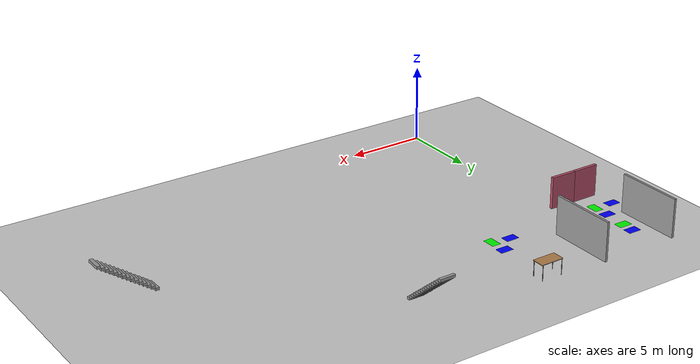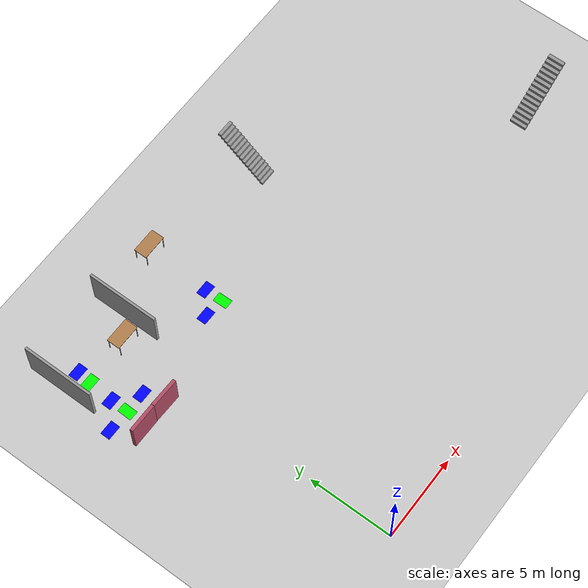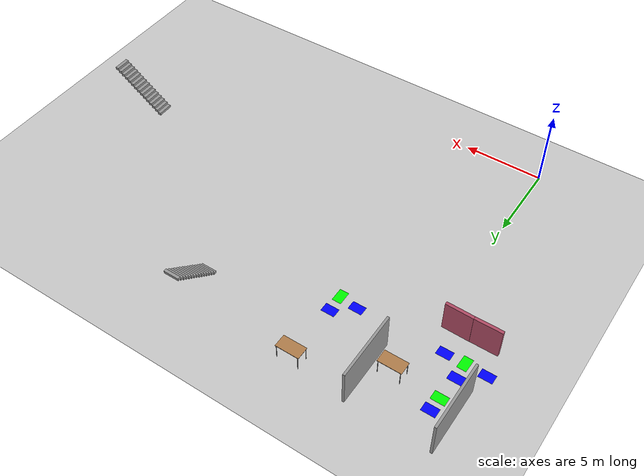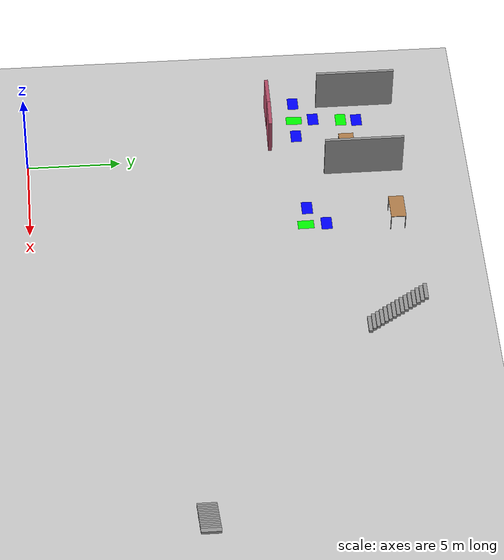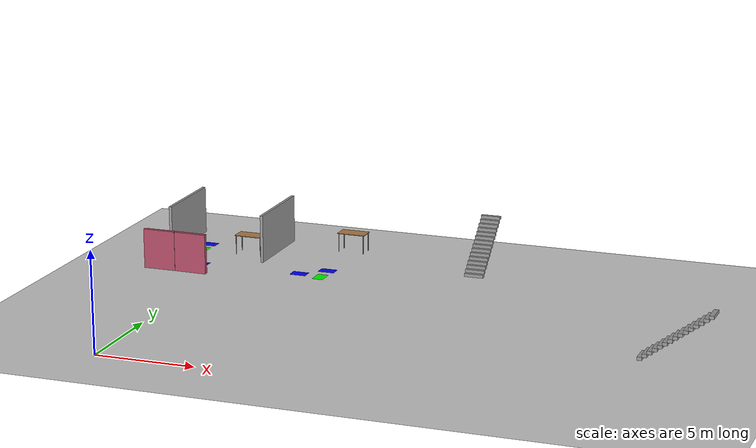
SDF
<sdf version="1.6">
 <world name="default">
  <model name="ground_plane">
   <pose>0 0 0.001 0 -0 0</pose>
   <static>1</static>
   <link name="link">
    <collision name="collision">
     <geometry><plane><normal>0 0 1</normal><size>100 100</size></plane></geometry>
     <surface><friction><ode><mu>100</mu><mu2>50</mu2></ode></friction></surface>
    </collision>
    <visual name="visual">
     <cast_shadows>0</cast_shadows>
     <geometry><plane><normal>0 0 1</normal><size>100 100</size></plane></geometry>
     <material>
      <script><uri>file://media/materials/scripts/gazebo.material</uri><name>Gazebo/Grey</name></script>
     </material>
    </visual>
   </link>
  </model>
  <model name="table_6">
   <static>1</static>
   <link name="link">
    <collision name="surface">
     <pose>0 0 1 0 -0 0</pose>
     <geometry><box><size>1.5 0.8 0.03</size></box></geometry>
     <surface><friction><ode><mu>0.6</mu><mu2>0.6</mu2></ode></friction></surface>
    </collision>
    <visual name="visual1">
     <pose>0 0 1 0 -0 0</pose>
     <geometry><box><size>1.5 0.8 0.03</size></box></geometry>
     <material>
      <script><uri>file://media/materials/scripts/gazebo.material</uri><name>Gazebo/Wood</name></script>
     </material>
    </visual>
    <collision name="front_left_leg">
     <pose>0.68 0.38 0.5 0 -0 0</pose>
     <geometry><cylinder><radius>0.02</radius><length>1</length></cylinder></geometry>
    </collision>
    <visual name="front_left_leg">
     <pose>0.68 0.38 0.5 0 -0 0</pose>
     <geometry><cylinder><radius>0.02</radius><length>1</length></cylinder></geometry>
     <material>
      <script><uri>file://media/materials/scripts/gazebo.material</uri><name>Gazebo/Grey</name></script>
     </material>
    </visual>
    <collision name="front_right_leg">
     <pose>0.68 -0.38 0.5 0 -0 0</pose>
     <geometry><cylinder><radius>0.02</radius><length>1</length></cylinder></geometry>
    </collision>
    <visual name="front_right_leg">
     <pose>0.68 -0.38 0.5 0 -0 0</pose>
     <geometry><cylinder><radius>0.02</radius><length>1</length></cylinder></geometry>
     <material>
      <script><uri>file://media/materials/scripts/gazebo.material</uri><name>Gazebo/Grey</name></script>
     </material>
    </visual>
    <collision name="back_right_leg">
     <pose>-0.68 -0.38 0.5 0 -0 0</pose>
     <geometry><cylinder><radius>0.02</radius><length>1</length></cylinder></geometry>
    </collision>
    <visual name="back_right_leg">
     <pose>-0.68 -0.38 0.5 0 -0 0</pose>
     <geometry><cylinder><radius>0.02</radius><length>1</length></cylinder></geometry>
     <material>
      <script><uri>file://media/materials/scripts/gazebo.material</uri><name>Gazebo/Grey</name></script>
     </material>
    </visual>
    <collision name="back_left_leg">
     <pose>-0.68 0.38 0.5 0 -0 0</pose>
     <geometry><cylinder><radius>0.02</radius><length>1</length></cylinder></geometry>
    </collision>
    <visual name="back_left_leg">
     <pose>-0.68 0.38 0.5 0 -0 0</pose>
     <geometry><cylinder><radius>0.02</radius><length>1</length></cylinder></geometry>
     <material>
      <script><uri>file://media/materials/scripts/gazebo.material</uri><name>Gazebo/Grey</name></script>
     </material>
    </visual>
   </link>
   <pose>0.272964 17.3657 0.001 0 -0 0</pose>
  </model>
  <model name="table_11">
   <static>1</static>
   <link name="link">
    <collision name="surface">
     <pose>0 0 1 0 -0 0</pose>
     <geometry><box><size>1.5 0.8 0.03</size></box></geometry>
     <surface><friction><ode><mu>0.6</mu><mu2>0.6</mu2></ode></friction></surface>
    </collision>
    <visual name="visual1">
     <pose>0 0 1 0 -0 0</pose>
     <geometry><box><size>1.5 0.8 0.03</size></box></geometry>
     <material>
      <script><uri>file://media/materials/scripts/gazebo.material</uri><name>Gazebo/Wood</name></script>
     </material>
    </visual>
    <collision name="front_left_leg">
     <pose>0.68 0.38 0.5 0 -0 0</pose>
     <geometry><cylinder><radius>0.02</radius><length>1</length></cylinder></geometry>
    </collision>
    <visual name="front_left_leg">
     <pose>0.68 0.38 0.5 0 -0 0</pose>
     <geometry><cylinder><radius>0.02</radius><length>1</length></cylinder></geometry>
     <material>
      <script><uri>file://media/materials/scripts/gazebo.material</uri><name>Gazebo/Grey</name></script>
     </material>
    </visual>
    <collision name="front_right_leg">
     <pose>0.68 -0.38 0.5 0 -0 0</pose>
     <geometry><cylinder><radius>0.02</radius><length>1</length></cylinder></geometry>
    </collision>
    <visual name="front_right_leg">
     <pose>0.68 -0.38 0.5 0 -0 0</pose>
     <geometry><cylinder><radius>0.02</radius><length>1</length></cylinder></geometry>
     <material>
      <script><uri>file://media/materials/scripts/gazebo.material</uri><name>Gazebo/Grey</name></script>
     </material>
    </visual>
    <collision name="back_right_leg">
     <pose>-0.68 -0.38 0.5 0 -0 0</pose>
     <geometry><cylinder><radius>0.02</radius><length>1</length></cylinder></geometry>
    </collision>
    <visual name="back_right_leg">
     <pose>-0.68 -0.38 0.5 0 -0 0</pose>
     <geometry><cylinder><radius>0.02</radius><length>1</length></cylinder></geometry>
     <material>
      <script><uri>file://media/materials/scripts/gazebo.material</uri><name>Gazebo/Grey</name></script>
     </material>
    </visual>
    <collision name="back_left_leg">
     <pose>-0.68 0.38 0.5 0 -0 0</pose>
     <geometry><cylinder><radius>0.02</radius><length>1</length></cylinder></geometry>
    </collision>
    <visual name="back_left_leg">
     <pose>-0.68 0.38 0.5 0 -0 0</pose>
     <geometry><cylinder><radius>0.02</radius><length>1</length></cylinder></geometry>
     <material>
      <script><uri>file://media/materials/scripts/gazebo.material</uri><name>Gazebo/Grey</name></script>
     </material>
    </visual>
   </link>
   <pose>5.18073 19.5521 0.001 0 -0 0</pose>
  </model>
  <model name="corridor_11">
   <link name="link">
    <pose>0 0 0.001 0 -0 0</pose>
    <inertial>
     <mass>0.0352517</mass>
     <inertia>
      <ixx>0.00099707</ixx>
      <ixy>0</ixy>
      <ixz>0</ixz>
      <iyy>0.00220147</iyy>
      <iyz>0</iyz>
      <izz>0.0031692</izz>
     </inertia>
     <pose>0 0 0.001 0 -0 0</pose>
    </inertial>
    <visual name="visual">
     <geometry><box><size>0.862743 0.578289 1e-06</size></box></geometry>
     <material>
      <script><name>Gazebo/Grey</name><uri>file://media/materials/scripts/gazebo.material</uri></script>
      <ambient>0 1 0 1</ambient>
      <diffuse>0 1 0 1</diffuse>
      <specular>0 1 0 1</specular>
      <emissive>0 1 0 1</emissive>
      <shader type="vertex"><normal_map>__default__</normal_map></shader>
     </material>
     <pose>0 0 0.001 0 -0 0</pose>
    </visual>
    <collision name="collision">
     <pose>0 0 0.001 0 -0 0</pose>
     <geometry><box><size>0.862743 0.578289 0.000477</size></box></geometry>
     <surface>
      <friction>
       <ode><mu>1</mu><mu2>1</mu2><fdir1>0 0 0</fdir1><slip1>0</slip1><slip2>0</slip2></ode>
       <torsional>
        <coefficient>1</coefficient>
        <patch_radius>0</patch_radius>
        <surface_radius>0</surface_radius>
        <use_patch_radius>1</use_patch_radius>
        <ode><slip>0</slip></ode>
       </torsional>
      </friction>
      <bounce><restitution_coefficient>0</restitution_coefficient><threshold>1e+06</threshold></bounce>
      <contact>
       <collide_without_contact>0</collide_without_contact>
       <collide_without_contact_bitmask>1</collide_without_contact_bitmask>
       <collide_bitmask>1</collide_bitmask>
       <ode>
        <soft_cfm>0</soft_cfm>
        <soft_erp>0.2</soft_erp>
        <kp>1e+13</kp>
        <kd>1</kd>
        <max_vel>0.01</max_vel>
        <min_depth>0</min_depth>
       </ode>
       <bullet>
        <split_impulse>1</split_impulse>
        <split_impulse_penetration_threshold>-0.01</split_impulse_penetration_threshold>
        <soft_cfm>0</soft_cfm>
        <soft_erp>0.2</soft_erp>
        <kp>1e+13</kp>
        <kd>1</kd>
       </bullet>
      </contact>
     </surface>
    </collision>
   </link>
   <static>1</static>
   <pose>5.24255 14.6948 0 0 -0 1.57892</pose>
  </model>
  <model name="intersection_22">
   <link name="link">
    <pose>0 0 0.001 0 -0 0</pose>
    <inertial>
     <mass>0.0352517</mass>
     <inertia>
      <ixx>0.000997067</ixx>
      <ixy>0</ixy>
      <ixz>0</ixz>
      <iyy>0.00220147</iyy>
      <iyz>0</iyz>
      <izz>0.0031692</izz>
     </inertia>
     <pose>0 0 0.001 0 -0 0</pose>
    </inertial>
    <visual name="visual">
     <geometry><box><size>0.862743 0.578289 1e-06</size></box></geometry>
     <material>
      <script><name>Gazebo/Grey</name><uri>file://media/materials/scripts/gazebo.material</uri></script>
      <ambient>0 0 1 1</ambient>
      <diffuse>0 0 1 1</diffuse>
      <specular>0 0 1 1</specular>
      <emissive>0 0 1 1</emissive>
      <shader type="vertex"><normal_map>__default__</normal_map></shader>
     </material>
     <pose>0 0 0.001 0 -0 0</pose>
    </visual>
    <collision name="collision">
     <pose>0 0 0.001 0 -0 0</pose>
     <geometry><box><size>0.862743 0.578289 0.000477</size></box></geometry>
     <surface>
      <friction>
       <ode><mu>1</mu><mu2>1</mu2><fdir1>0 0 0</fdir1><slip1>0</slip1><slip2>0</slip2></ode>
       <torsional>
        <coefficient>1</coefficient>
        <patch_radius>0</patch_radius>
        <surface_radius>0</surface_radius>
        <use_patch_radius>1</use_patch_radius>
        <ode><slip>0</slip></ode>
       </torsional>
      </friction>
      <bounce><restitution_coefficient>0</restitution_coefficient><threshold>1e+06</threshold></bounce>
      <contact>
       <collide_without_contact>0</collide_without_contact>
       <collide_without_contact_bitmask>1</collide_without_contact_bitmask>
       <collide_bitmask>1</collide_bitmask>
       <ode>
        <soft_cfm>0</soft_cfm>
        <soft_erp>0.2</soft_erp>
        <kp>1e+13</kp>
        <kd>1</kd>
        <max_vel>0.01</max_vel>
        <min_depth>0</min_depth>
       </ode>
       <bullet>
        <split_impulse>1</split_impulse>
        <split_impulse_penetration_threshold>-0.01</split_impulse_penetration_threshold>
        <soft_cfm>0</soft_cfm>
        <soft_erp>0.2</soft_erp>
        <kp>1e+13</kp>
        <kd>1</kd>
       </bullet>
      </contact>
     </surface>
    </collision>
   </link>
   <static>1</static>
   <pose>5.20823 15.8049 0 0 -0 0</pose>
  </model>
  <model name="corridor_13">
   <link name="link">
    <pose>0 0 0.001 0 -0 0</pose>
    <inertial>
     <mass>0.0352517</mass>
     <inertia>
      <ixx>0.00099707</ixx>
      <ixy>0</ixy>
      <ixz>0</ixz>
      <iyy>0.00220147</iyy>
      <iyz>0</iyz>
      <izz>0.0031692</izz>
     </inertia>
     <pose>0 0 0.001 0 -0 0</pose>
    </inertial>
    <visual name="visual">
     <geometry><box><size>0.862743 0.578289 1e-06</size></box></geometry>
     <material>
      <script><name>Gazebo/Grey</name><uri>file://media/materials/scripts/gazebo.material</uri></script>
      <ambient>0 1 0 1</ambient>
      <diffuse>0 1 0 1</diffuse>
      <specular>0 1 0 1</specular>
      <emissive>0 1 0 1</emissive>
      <shader type="vertex"><normal_map>__default__</normal_map></shader>
     </material>
     <pose>0 0 0.001 0 -0 0</pose>
    </visual>
    <collision name="collision">
     <pose>0 0 0.001 0 -0 0</pose>
     <geometry><box><size>0.862743 0.578289 0.000477</size></box></geometry>
     <surface>
      <friction>
       <ode><mu>1</mu><mu2>1</mu2><fdir1>0 0 0</fdir1><slip1>0</slip1><slip2>0</slip2></ode>
       <torsional>
        <coefficient>1</coefficient>
        <patch_radius>0</patch_radius>
        <surface_radius>0</surface_radius>
        <use_patch_radius>1</use_patch_radius>
        <ode><slip>0</slip></ode>
       </torsional>
      </friction>
      <bounce><restitution_coefficient>0</restitution_coefficient><threshold>1e+06</threshold></bounce>
      <contact>
       <collide_without_contact>0</collide_without_contact>
       <collide_without_contact_bitmask>1</collide_without_contact_bitmask>
       <collide_bitmask>1</collide_bitmask>
       <ode>
        <soft_cfm>0</soft_cfm>
        <soft_erp>0.2</soft_erp>
        <kp>1e+13</kp>
        <kd>1</kd>
        <max_vel>0.01</max_vel>
        <min_depth>0</min_depth>
       </ode>
       <bullet>
        <split_impulse>1</split_impulse>
        <split_impulse_penetration_threshold>-0.01</split_impulse_penetration_threshold>
        <soft_cfm>0</soft_cfm>
        <soft_erp>0.2</soft_erp>
        <kp>1e+13</kp>
        <kd>1</kd>
       </bullet>
      </contact>
     </surface>
    </collision>
   </link>
   <static>1</static>
   <pose>-2.65426 14.7336 0 0 -0 1.54604</pose>
  </model>
  <model name="intersection_23">
   <link name="link">
    <pose>0 0 0.001 0 -0 0</pose>
    <inertial>
     <mass>0.0352517</mass>
     <inertia>
      <ixx>0.000997067</ixx>
      <ixy>0</ixy>
      <ixz>0</ixz>
      <iyy>0.00220147</iyy>
      <iyz>0</iyz>
      <izz>0.0031692</izz>
     </inertia>
     <pose>0 0 0.001 0 -0 0</pose>
    </inertial>
    <visual name="visual">
     <geometry><box><size>0.862743 0.578289 1e-06</size></box></geometry>
     <material>
      <script><name>Gazebo/Grey</name><uri>file://media/materials/scripts/gazebo.material</uri></script>
      <ambient>0 0 1 1</ambient>
      <diffuse>0 0 1 1</diffuse>
      <specular>0 0 1 1</specular>
      <emissive>0 0 1 1</emissive>
      <shader type="vertex"><normal_map>__default__</normal_map></shader>
     </material>
     <pose>0 0 0.001 0 -0 0</pose>
    </visual>
    <collision name="collision">
     <pose>0 0 0.001 0 -0 0</pose>
     <geometry><box><size>0.862743 0.578289 0.000477</size></box></geometry>
     <surface>
      <friction>
       <ode><mu>1</mu><mu2>1</mu2><fdir1>0 0 0</fdir1><slip1>0</slip1><slip2>0</slip2></ode>
       <torsional>
        <coefficient>1</coefficient>
        <patch_radius>0</patch_radius>
        <surface_radius>0</surface_radius>
        <use_patch_radius>1</use_patch_radius>
        <ode><slip>0</slip></ode>
       </torsional>
      </friction>
      <bounce><restitution_coefficient>0</restitution_coefficient><threshold>1e+06</threshold></bounce>
      <contact>
       <collide_without_contact>0</collide_without_contact>
       <collide_without_contact_bitmask>1</collide_without_contact_bitmask>
       <collide_bitmask>1</collide_bitmask>
       <ode>
        <soft_cfm>0</soft_cfm>
        <soft_erp>0.2</soft_erp>
        <kp>1e+13</kp>
        <kd>1</kd>
        <max_vel>0.01</max_vel>
        <min_depth>0</min_depth>
       </ode>
       <bullet>
        <split_impulse>1</split_impulse>
        <split_impulse_penetration_threshold>-0.01</split_impulse_penetration_threshold>
        <soft_cfm>0</soft_cfm>
        <soft_erp>0.2</soft_erp>
        <kp>1e+13</kp>
        <kd>1</kd>
       </bullet>
      </contact>
     </surface>
    </collision>
   </link>
   <static>1</static>
   <pose>-2.69543 15.7893 0 0 -0 0</pose>
  </model>
  <model name="intersection_5">
   <link name="link">
    <pose>0 0 0.001 0 -0 0</pose>
    <inertial>
     <mass>0.0352517</mass>
     <inertia>
      <ixx>0.000997067</ixx>
      <ixy>0</ixy>
      <ixz>0</ixz>
      <iyy>0.00220147</iyy>
      <iyz>0</iyz>
      <izz>0.0031692</izz>
     </inertia>
     <pose>0 0 0.001 0 -0 0</pose>
    </inertial>
    <visual name="visual">
     <geometry><box><size>0.862743 0.578289 1e-06</size></box></geometry>
     <material>
      <script><name>Gazebo/Grey</name><uri>file://media/materials/scripts/gazebo.material</uri></script>
      <ambient>0 0 1 1</ambient>
      <diffuse>0 0 1 1</diffuse>
      <specular>0 0 1 1</specular>
      <emissive>0 0 1 1</emissive>
      <shader type="vertex"><normal_map>__default__</normal_map></shader>
     </material>
     <pose>0 0 0.001 0 -0 0</pose>
    </visual>
    <collision name="collision">
     <pose>0 0 0.001 0 -0 0</pose>
     <geometry><box><size>0.862743 0.578289 0.000477</size></box></geometry>
     <surface>
      <friction>
       <ode><mu>1</mu><mu2>1</mu2><fdir1>0 0 0</fdir1><slip1>0</slip1><slip2>0</slip2></ode>
       <torsional>
        <coefficient>1</coefficient>
        <patch_radius>0</patch_radius>
        <surface_radius>0</surface_radius>
        <use_patch_radius>1</use_patch_radius>
        <ode><slip>0</slip></ode>
       </torsional>
      </friction>
      <bounce><restitution_coefficient>0</restitution_coefficient><threshold>1e+06</threshold></bounce>
      <contact>
       <collide_without_contact>0</collide_without_contact>
       <collide_without_contact_bitmask>1</collide_without_contact_bitmask>
       <collide_bitmask>1</collide_bitmask>
       <ode>
        <soft_cfm>0</soft_cfm>
        <soft_erp>0.2</soft_erp>
        <kp>1e+13</kp>
        <kd>1</kd>
        <max_vel>0.01</max_vel>
        <min_depth>0</min_depth>
       </ode>
       <bullet>
        <split_impulse>1</split_impulse>
        <split_impulse_penetration_threshold>-0.01</split_impulse_penetration_threshold>
        <soft_cfm>0</soft_cfm>
        <soft_erp>0.2</soft_erp>
        <kp>1e+13</kp>
        <kd>1</kd>
       </bullet>
      </contact>
     </surface>
    </collision>
   </link>
   <static>1</static>
   <pose>-3.98047 14.7833 0 0 -0 0</pose>
  </model>
  <model name="intersection_6">
   <link name="link">
    <pose>0 0 0.001 0 -0 0</pose>
    <inertial>
     <mass>0.0352517</mass>
     <inertia>
      <ixx>0.000997067</ixx>
      <ixy>0</ixy>
      <ixz>0</ixz>
      <iyy>0.00220147</iyy>
      <iyz>0</iyz>
      <izz>0.0031692</izz>
     </inertia>
     <pose>0 0 0.001 0 -0 0</pose>
    </inertial>
    <visual name="visual">
     <geometry><box><size>0.862743 0.578289 1e-06</size></box></geometry>
     <material>
      <script><name>Gazebo/Grey</name><uri>file://media/materials/scripts/gazebo.material</uri></script>
      <ambient>0 0 1 1</ambient>
      <diffuse>0 0 1 1</diffuse>
      <specular>0 0 1 1</specular>
      <emissive>0 0 1 1</emissive>
      <shader type="vertex"><normal_map>__default__</normal_map></shader>
     </material>
     <pose>0 0 0.001 0 -0 0</pose>
    </visual>
    <collision name="collision">
     <pose>0 0 0.001 0 -0 0</pose>
     <geometry><box><size>0.862743 0.578289 0.000477</size></box></geometry>
     <surface>
      <friction>
       <ode><mu>1</mu><mu2>1</mu2><fdir1>0 0 0</fdir1><slip1>0</slip1><slip2>0</slip2></ode>
       <torsional>
        <coefficient>1</coefficient>
        <patch_radius>0</patch_radius>
        <surface_radius>0</surface_radius>
        <use_patch_radius>1</use_patch_radius>
        <ode><slip>0</slip></ode>
       </torsional>
      </friction>
      <bounce><restitution_coefficient>0</restitution_coefficient><threshold>1e+06</threshold></bounce>
      <contact>
       <collide_without_contact>0</collide_without_contact>
       <collide_without_contact_bitmask>1</collide_without_contact_bitmask>
       <collide_bitmask>1</collide_bitmask>
       <ode>
        <soft_cfm>0</soft_cfm>
        <soft_erp>0.2</soft_erp>
        <kp>1e+13</kp>
        <kd>1</kd>
        <max_vel>0.01</max_vel>
        <min_depth>0</min_depth>
       </ode>
       <bullet>
        <split_impulse>1</split_impulse>
        <split_impulse_penetration_threshold>-0.01</split_impulse_penetration_threshold>
        <soft_cfm>0</soft_cfm>
        <soft_erp>0.2</soft_erp>
        <kp>1e+13</kp>
        <kd>1</kd>
       </bullet>
      </contact>
     </surface>
    </collision>
   </link>
   <static>1</static>
   <pose>-1.44374 14.7521 0 0 -0 0</pose>
  </model>
  <model name="doorOutside_4">
   <link name="link">
    <pose>0.155539 -0.366282 0.216958 0 -0 0</pose>
    <inertial>
     <mass>2.13199</mass>
     <inertia>
      <ixx>0.452656</ixx>
      <ixy>0</ixy>
      <ixz>0</ixz>
      <iyy>0.796738</iyy>
      <iyz>0</iyz>
      <izz>0.699414</izz>
     </inertia>
    </inertial>
    <visual name="visual">
     <geometry><box><size>1.71368 0.198843 2.05986</size></box></geometry>
     <material>
      <script><name>Gazebo/Grey</name><uri>file://media/materials/scripts/gazebo.material</uri></script>
      <ambient>0.7 0.3 0.4 1</ambient>
      <diffuse>0.7 0.7 0.7 1</diffuse>
      <specular>0.01 0.01 0.01 1</specular>
      <emissive>0 0 0 1</emissive>
      <shader type="vertex"><normal_map>__default__</normal_map></shader>
      <lighting>0</lighting>
     </material>
    </visual>
    <collision name="collision">
     <geometry><box><size>1.71368 0.198843 2.05986</size></box></geometry>
     <surface>
      <friction>
       <ode><mu>1</mu><mu2>1</mu2><fdir1>0 0 0</fdir1><slip1>0</slip1><slip2>0</slip2></ode>
       <torsional>
        <coefficient>1</coefficient>
        <patch_radius>0</patch_radius>
        <surface_radius>0</surface_radius>
        <use_patch_radius>1</use_patch_radius>
        <ode><slip>0</slip></ode>
       </torsional>
      </friction>
      <bounce><restitution_coefficient>0</restitution_coefficient><threshold>1e+06</threshold></bounce>
      <contact>
       <collide_without_contact>0</collide_without_contact>
       <collide_without_contact_bitmask>1</collide_without_contact_bitmask>
       <collide_bitmask>1</collide_bitmask>
       <ode>
        <soft_cfm>0</soft_cfm>
        <soft_erp>0.2</soft_erp>
        <kp>1e+13</kp>
        <kd>1</kd>
        <max_vel>0.01</max_vel>
        <min_depth>0</min_depth>
       </ode>
       <bullet>
        <split_impulse>1</split_impulse>
        <split_impulse_penetration_threshold>-0.01</split_impulse_penetration_threshold>
        <soft_cfm>0</soft_cfm>
        <soft_erp>0.2</soft_erp>
        <kp>1e+13</kp>
        <kd>1</kd>
       </bullet>
      </contact>
     </surface>
    </collision>
   </link>
   <static>0</static>
   <pose>-3.16806 13.6328 0.812967 0 -5e-06 0.00012</pose>
  </model>
  <model name="intersection_57">
   <link name="link">
    <pose>0 0 0.001 0 -0 0</pose>
    <inertial>
     <mass>0.0352517</mass>
     <inertia>
      <ixx>0.000997067</ixx>
      <ixy>0</ixy>
      <ixz>0</ixz>
      <iyy>0.00220147</iyy>
      <iyz>0</iyz>
      <izz>0.0031692</izz>
     </inertia>
     <pose>0 0 0.001 0 -0 0</pose>
    </inertial>
    <visual name="visual">
     <geometry><box><size>0.862743 0.578289 1e-06</size></box></geometry>
     <material>
      <script><name>Gazebo/Grey</name><uri>file://media/materials/scripts/gazebo.material</uri></script>
      <ambient>0 0 1 1</ambient>
      <diffuse>0 0 1 1</diffuse>
      <specular>0 0 1 1</specular>
      <emissive>0 0 1 1</emissive>
      <shader type="vertex"><normal_map>__default__</normal_map></shader>
     </material>
     <pose>0 0 0.001 0 -0 0</pose>
    </visual>
    <collision name="collision">
     <pose>0 0 0.001 0 -0 0</pose>
     <geometry><box><size>0.862743 0.578289 0.000477</size></box></geometry>
     <surface>
      <friction>
       <ode><mu>1</mu><mu2>1</mu2><fdir1>0 0 0</fdir1><slip1>0</slip1><slip2>0</slip2></ode>
       <torsional>
        <coefficient>1</coefficient>
        <patch_radius>0</patch_radius>
        <surface_radius>0</surface_radius>
        <use_patch_radius>1</use_patch_radius>
        <ode><slip>0</slip></ode>
       </torsional>
      </friction>
      <bounce><restitution_coefficient>0</restitution_coefficient><threshold>1e+06</threshold></bounce>
      <contact>
       <collide_without_contact>0</collide_without_contact>
       <collide_without_contact_bitmask>1</collide_without_contact_bitmask>
       <collide_bitmask>1</collide_bitmask>
       <ode>
        <soft_cfm>0</soft_cfm>
        <soft_erp>0.2</soft_erp>
        <kp>1e+13</kp>
        <kd>1</kd>
        <max_vel>0.01</max_vel>
        <min_depth>0</min_depth>
       </ode>
       <bullet>
        <split_impulse>1</split_impulse>
        <split_impulse_penetration_threshold>-0.01</split_impulse_penetration_threshold>
        <soft_cfm>0</soft_cfm>
        <soft_erp>0.2</soft_erp>
        <kp>1e+13</kp>
        <kd>1</kd>
       </bullet>
      </contact>
     </surface>
    </collision>
   </link>
   <static>1</static>
   <pose>4.02721 14.859 0 0 -0 0</pose>
  </model>
  <model name="Se1_cut">
   <pose>3.62364 13.9276 0 0 -0 0</pose>
   <link name="Stairs_0">
    <visual name="Stairs_0_Visual_0">
     <pose>8.95439 3.41699 0.083333 0 -0 -3.14159</pose>
     <geometry><box><size>1 0.196093 0.166667</size></box></geometry>
     <material>
      <script><uri>file://media/materials/scripts/gazebo.material</uri><name>Gazebo/Grey</name></script>
      <ambient>1 1 1 1</ambient>
     </material>
    </visual>
    <collision name="Stairs_0_Collision_0">
     <geometry><box><size>1 0.196093 0.166667</size></box></geometry>
     <pose>8.95439 3.41699 0.083333 0 -0 -3.14159</pose>
    </collision>
    <visual name="Stairs_0_Visual_1">
     <pose>8.95439 3.61308 0.25 0 -0 -3.14159</pose>
     <geometry><box><size>1 0.196093 0.166667</size></box></geometry>
     <material>
      <script><uri>file://media/materials/scripts/gazebo.material</uri><name>Gazebo/Grey</name></script>
      <ambient>1 1 1 1</ambient>
     </material>
    </visual>
    <collision name="Stairs_0_Collision_1">
     <geometry><box><size>1 0.196093 0.166667</size></box></geometry>
     <pose>8.95439 3.61308 0.25 0 -0 -3.14159</pose>
    </collision>
    <visual name="Stairs_0_Visual_2">
     <pose>8.95439 3.80917 0.416667 0 -0 -3.14159</pose>
     <geometry><box><size>1 0.196093 0.166667</size></box></geometry>
     <material>
      <script><uri>file://media/materials/scripts/gazebo.material</uri><name>Gazebo/Grey</name></script>
      <ambient>1 1 1 1</ambient>
     </material>
    </visual>
    <collision name="Stairs_0_Collision_2">
     <geometry><box><size>1 0.196093 0.166667</size></box></geometry>
     <pose>8.95439 3.80917 0.416667 0 -0 -3.14159</pose>
    </collision>
    <visual name="Stairs_0_Visual_3">
     <pose>8.95439 4.00526 0.583333 0 -0 -3.14159</pose>
     <geometry><box><size>1 0.196093 0.166667</size></box></geometry>
     <material>
      <script><uri>file://media/materials/scripts/gazebo.material</uri><name>Gazebo/Grey</name></script>
      <ambient>1 1 1 1</ambient>
     </material>
    </visual>
    <collision name="Stairs_0_Collision_3">
     <geometry><box><size>1 0.196093 0.166667</size></box></geometry>
     <pose>8.95439 4.00526 0.583333 0 -0 -3.14159</pose>
    </collision>
    <visual name="Stairs_0_Visual_4">
     <pose>8.95439 4.20136 0.75 0 -0 -3.14159</pose>
     <geometry><box><size>1 0.196093 0.166667</size></box></geometry>
     <material>
      <script><uri>file://media/materials/scripts/gazebo.material</uri><name>Gazebo/Grey</name></script>
      <ambient>1 1 1 1</ambient>
     </material>
    </visual>
    <collision name="Stairs_0_Collision_4">
     <geometry><box><size>1 0.196093 0.166667</size></box></geometry>
     <pose>8.95439 4.20136 0.75 0 -0 -3.14159</pose>
    </collision>
    <visual name="Stairs_0_Visual_5">
     <pose>8.95439 4.39745 0.916667 0 -0 -3.14159</pose>
     <geometry><box><size>1 0.196093 0.166667</size></box></geometry>
     <material>
      <script><uri>file://media/materials/scripts/gazebo.material</uri><name>Gazebo/Grey</name></script>
      <ambient>1 1 1 1</ambient>
     </material>
    </visual>
    <collision name="Stairs_0_Collision_5">
     <geometry><box><size>1 0.196093 0.166667</size></box></geometry>
     <pose>8.95439 4.39745 0.916667 0 -0 -3.14159</pose>
    </collision>
    <visual name="Stairs_0_Visual_6">
     <pose>8.95439 4.59354 1.08333 0 -0 -3.14159</pose>
     <geometry><box><size>1 0.196093 0.166667</size></box></geometry>
     <material>
      <script><uri>file://media/materials/scripts/gazebo.material</uri><name>Gazebo/Grey</name></script>
      <ambient>1 1 1 1</ambient>
     </material>
    </visual>
    <collision name="Stairs_0_Collision_6">
     <geometry><box><size>1 0.196093 0.166667</size></box></geometry>
     <pose>8.95439 4.59354 1.08333 0 -0 -3.14159</pose>
    </collision>
    <visual name="Stairs_0_Visual_7">
     <pose>8.95439 4.78964 1.25 0 -0 -3.14159</pose>
     <geometry><box><size>1 0.196093 0.166667</size></box></geometry>
     <material>
      <script><uri>file://media/materials/scripts/gazebo.material</uri><name>Gazebo/Grey</name></script>
      <ambient>1 1 1 1</ambient>
     </material>
    </visual>
    <collision name="Stairs_0_Collision_7">
     <geometry><box><size>1 0.196093 0.166667</size></box></geometry>
     <pose>8.95439 4.78964 1.25 0 -0 -3.14159</pose>
    </collision>
    <visual name="Stairs_0_Visual_8">
     <pose>8.95439 4.98573 1.41667 0 -0 -3.14159</pose>
     <geometry><box><size>1 0.196093 0.166667</size></box></geometry>
     <material>
      <script><uri>file://media/materials/scripts/gazebo.material</uri><name>Gazebo/Grey</name></script>
      <ambient>1 1 1 1</ambient>
     </material>
    </visual>
    <collision name="Stairs_0_Collision_8">
     <geometry><box><size>1 0.196093 0.166667</size></box></geometry>
     <pose>8.95439 4.98573 1.41667 0 -0 -3.14159</pose>
    </collision>
    <visual name="Stairs_0_Visual_9">
     <pose>8.95439 5.18182 1.58333 0 -0 -3.14159</pose>
     <geometry><box><size>1 0.196093 0.166667</size></box></geometry>
     <material>
      <script><uri>file://media/materials/scripts/gazebo.material</uri><name>Gazebo/Grey</name></script>
      <ambient>1 1 1 1</ambient>
     </material>
    </visual>
    <collision name="Stairs_0_Collision_9">
     <geometry><box><size>1 0.196093 0.166667</size></box></geometry>
     <pose>8.95439 5.18182 1.58333 0 -0 -3.14159</pose>
    </collision>
    <visual name="Stairs_0_Visual_10">
     <pose>8.95439 5.37792 1.75 0 -0 -3.14159</pose>
     <geometry><box><size>1 0.196093 0.166667</size></box></geometry>
     <material>
      <script><uri>file://media/materials/scripts/gazebo.material</uri><name>Gazebo/Grey</name></script>
      <ambient>1 1 1 1</ambient>
     </material>
    </visual>
    <collision name="Stairs_0_Collision_10">
     <geometry><box><size>1 0.196093 0.166667</size></box></geometry>
     <pose>8.95439 5.37792 1.75 0 -0 -3.14159</pose>
    </collision>
    <visual name="Stairs_0_Visual_11">
     <pose>8.95439 5.57401 1.91667 0 -0 -3.14159</pose>
     <geometry><box><size>1 0.196093 0.166667</size></box></geometry>
     <material>
      <script><uri>file://media/materials/scripts/gazebo.material</uri><name>Gazebo/Grey</name></script>
      <ambient>1 1 1 1</ambient>
     </material>
    </visual>
    <collision name="Stairs_0_Collision_11">
     <geometry><box><size>1 0.196093 0.166667</size></box></geometry>
     <pose>8.95439 5.57401 1.91667 0 -0 -3.14159</pose>
    </collision>
    <visual name="Stairs_0_Visual_12">
     <pose>8.95439 5.7701 2.08333 0 -0 -3.14159</pose>
     <geometry><box><size>1 0.196093 0.166667</size></box></geometry>
     <material>
      <script><uri>file://media/materials/scripts/gazebo.material</uri><name>Gazebo/Grey</name></script>
      <ambient>1 1 1 1</ambient>
     </material>
    </visual>
    <collision name="Stairs_0_Collision_12">
     <geometry><box><size>1 0.196093 0.166667</size></box></geometry>
     <pose>8.95439 5.7701 2.08333 0 -0 -3.14159</pose>
    </collision>
    <visual name="Stairs_0_Visual_13">
     <pose>8.95439 5.9662 2.25 0 -0 -3.14159</pose>
     <geometry><box><size>1 0.196093 0.166667</size></box></geometry>
     <material>
      <script><uri>file://media/materials/scripts/gazebo.material</uri><name>Gazebo/Grey</name></script>
      <ambient>1 1 1 1</ambient>
     </material>
    </visual>
    <collision name="Stairs_0_Collision_13">
     <geometry><box><size>1 0.196093 0.166667</size></box></geometry>
     <pose>8.95439 5.9662 2.25 0 -0 -3.14159</pose>
    </collision>
    <visual name="Stairs_0_Visual_14">
     <pose>8.95439 6.16229 2.41667 0 -0 -3.14159</pose>
     <geometry><box><size>1 0.196093 0.166667</size></box></geometry>
     <material>
      <script><uri>file://media/materials/scripts/gazebo.material</uri><name>Gazebo/Grey</name></script>
      <ambient>1 1 1 1</ambient>
     </material>
    </visual>
    <collision name="Stairs_0_Collision_14">
     <geometry><box><size>1 0.196093 0.166667</size></box></geometry>
     <pose>8.95439 6.16229 2.41667 0 -0 -3.14159</pose>
    </collision>
   </link>
   <link name="Stairs_1">
    <visual name="Stairs_1_Visual_0">
     <pose>20.036 -5.73074 0.083333 0 -0 1.5708</pose>
     <geometry><box><size>1 0.233333 0.166667</size></box></geometry>
     <material>
      <script><uri>file://media/materials/scripts/gazebo.material</uri><name>Gazebo/Grey</name></script>
      <ambient>1 1 1 1</ambient>
     </material>
    </visual>
    <collision name="Stairs_1_Collision_0">
     <geometry><box><size>1 0.233333 0.166667</size></box></geometry>
     <pose>20.036 -5.73074 0.083333 0 -0 1.5708</pose>
    </collision>
    <visual name="Stairs_1_Visual_1">
     <pose>20.2693 -5.73074 0.25 0 -0 1.5708</pose>
     <geometry><box><size>1 0.233333 0.166667</size></box></geometry>
     <material>
      <script><uri>file://media/materials/scripts/gazebo.material</uri><name>Gazebo/Grey</name></script>
      <ambient>1 1 1 1</ambient>
     </material>
    </visual>
    <collision name="Stairs_1_Collision_1">
     <geometry><box><size>1 0.233333 0.166667</size></box></geometry>
     <pose>20.2693 -5.73074 0.25 0 -0 1.5708</pose>
    </collision>
    <visual name="Stairs_1_Visual_2">
     <pose>20.5026 -5.73074 0.416667 0 -0 1.5708</pose>
     <geometry><box><size>1 0.233333 0.166667</size></box></geometry>
     <material>
      <script><uri>file://media/materials/scripts/gazebo.material</uri><name>Gazebo/Grey</name></script>
      <ambient>1 1 1 1</ambient>
     </material>
    </visual>
    <collision name="Stairs_1_Collision_2">
     <geometry><box><size>1 0.233333 0.166667</size></box></geometry>
     <pose>20.5026 -5.73074 0.416667 0 -0 1.5708</pose>
    </collision>
    <visual name="Stairs_1_Visual_3">
     <pose>20.736 -5.73074 0.583333 0 -0 1.5708</pose>
     <geometry><box><size>1 0.233333 0.166667</size></box></geometry>
     <material>
      <script><uri>file://media/materials/scripts/gazebo.material</uri><name>Gazebo/Grey</name></script>
      <ambient>1 1 1 1</ambient>
     </material>
    </visual>
    <collision name="Stairs_1_Collision_3">
     <geometry><box><size>1 0.233333 0.166667</size></box></geometry>
     <pose>20.736 -5.73074 0.583333 0 -0 1.5708</pose>
    </collision>
    <visual name="Stairs_1_Visual_4">
     <pose>20.9693 -5.73074 0.75 0 -0 1.5708</pose>
     <geometry><box><size>1 0.233333 0.166667</size></box></geometry>
     <material>
      <script><uri>file://media/materials/scripts/gazebo.material</uri><name>Gazebo/Grey</name></script>
      <ambient>1 1 1 1</ambient>
     </material>
    </visual>
    <collision name="Stairs_1_Collision_4">
     <geometry><box><size>1 0.233333 0.166667</size></box></geometry>
     <pose>20.9693 -5.73074 0.75 0 -0 1.5708</pose>
    </collision>
    <visual name="Stairs_1_Visual_5">
     <pose>21.2026 -5.73074 0.916667 0 -0 1.5708</pose>
     <geometry><box><size>1 0.233333 0.166667</size></box></geometry>
     <material>
      <script><uri>file://media/materials/scripts/gazebo.material</uri><name>Gazebo/Grey</name></script>
      <ambient>1 1 1 1</ambient>
     </material>
    </visual>
    <collision name="Stairs_1_Collision_5">
     <geometry><box><size>1 0.233333 0.166667</size></box></geometry>
     <pose>21.2026 -5.73074 0.916667 0 -0 1.5708</pose>
    </collision>
    <visual name="Stairs_1_Visual_6">
     <pose>21.436 -5.73074 1.08333 0 -0 1.5708</pose>
     <geometry><box><size>1 0.233333 0.166667</size></box></geometry>
     <material>
      <script><uri>file://media/materials/scripts/gazebo.material</uri><name>Gazebo/Grey</name></script>
      <ambient>1 1 1 1</ambient>
     </material>
    </visual>
    <collision name="Stairs_1_Collision_6">
     <geometry><box><size>1 0.233333 0.166667</size></box></geometry>
     <pose>21.436 -5.73074 1.08333 0 -0 1.5708</pose>
    </collision>
    <visual name="Stairs_1_Visual_7">
     <pose>21.6693 -5.73074 1.25 0 -0 1.5708</pose>
     <geometry><box><size>1 0.233333 0.166667</size></box></geometry>
     <material>
      <script><uri>file://media/materials/scripts/gazebo.material</uri><name>Gazebo/Grey</name></script>
      <ambient>1 1 1 1</ambient>
     </material>
    </visual>
    <collision name="Stairs_1_Collision_7">
     <geometry><box><size>1 0.233333 0.166667</size></box></geometry>
     <pose>21.6693 -5.73074 1.25 0 -0 1.5708</pose>
    </collision>
    <visual name="Stairs_1_Visual_8">
     <pose>21.9026 -5.73074 1.41667 0 -0 1.5708</pose>
     <geometry><box><size>1 0.233333 0.166667</size></box></geometry>
     <material>
      <script><uri>file://media/materials/scripts/gazebo.material</uri><name>Gazebo/Grey</name></script>
      <ambient>1 1 1 1</ambient>
     </material>
    </visual>
    <collision name="Stairs_1_Collision_8">
     <geometry><box><size>1 0.233333 0.166667</size></box></geometry>
     <pose>21.9026 -5.73074 1.41667 0 -0 1.5708</pose>
    </collision>
    <visual name="Stairs_1_Visual_9">
     <pose>22.136 -5.73074 1.58333 0 -0 1.5708</pose>
     <geometry><box><size>1 0.233333 0.166667</size></box></geometry>
     <material>
      <script><uri>file://media/materials/scripts/gazebo.material</uri><name>Gazebo/Grey</name></script>
      <ambient>1 1 1 1</ambient>
     </material>
    </visual>
    <collision name="Stairs_1_Collision_9">
     <geometry><box><size>1 0.233333 0.166667</size></box></geometry>
     <pose>22.136 -5.73074 1.58333 0 -0 1.5708</pose>
    </collision>
    <visual name="Stairs_1_Visual_10">
     <pose>22.3693 -5.73074 1.75 0 -0 1.5708</pose>
     <geometry><box><size>1 0.233333 0.166667</size></box></geometry>
     <material>
      <script><uri>file://media/materials/scripts/gazebo.material</uri><name>Gazebo/Grey</name></script>
      <ambient>1 1 1 1</ambient>
     </material>
    </visual>
    <collision name="Stairs_1_Collision_10">
     <geometry><box><size>1 0.233333 0.166667</size></box></geometry>
     <pose>22.3693 -5.73074 1.75 0 -0 1.5708</pose>
    </collision>
    <visual name="Stairs_1_Visual_11">
     <pose>22.6026 -5.73074 1.91667 0 -0 1.5708</pose>
     <geometry><box><size>1 0.233333 0.166667</size></box></geometry>
     <material>
      <script><uri>file://media/materials/scripts/gazebo.material</uri><name>Gazebo/Grey</name></script>
      <ambient>1 1 1 1</ambient>
     </material>
    </visual>
    <collision name="Stairs_1_Collision_11">
     <geometry><box><size>1 0.233333 0.166667</size></box></geometry>
     <pose>22.6026 -5.73074 1.91667 0 -0 1.5708</pose>
    </collision>
    <visual name="Stairs_1_Visual_12">
     <pose>22.836 -5.73074 2.08333 0 -0 1.5708</pose>
     <geometry><box><size>1 0.233333 0.166667</size></box></geometry>
     <material>
      <script><uri>file://media/materials/scripts/gazebo.material</uri><name>Gazebo/Grey</name></script>
      <ambient>1 1 1 1</ambient>
     </material>
    </visual>
    <collision name="Stairs_1_Collision_12">
     <geometry><box><size>1 0.233333 0.166667</size></box></geometry>
     <pose>22.836 -5.73074 2.08333 0 -0 1.5708</pose>
    </collision>
    <visual name="Stairs_1_Visual_13">
     <pose>23.0693 -5.73074 2.25 0 -0 1.5708</pose>
     <geometry><box><size>1 0.233333 0.166667</size></box></geometry>
     <material>
      <script><uri>file://media/materials/scripts/gazebo.material</uri><name>Gazebo/Grey</name></script>
      <ambient>1 1 1 1</ambient>
     </material>
    </visual>
    <collision name="Stairs_1_Collision_13">
     <geometry><box><size>1 0.233333 0.166667</size></box></geometry>
     <pose>23.0693 -5.73074 2.25 0 -0 1.5708</pose>
    </collision>
    <visual name="Stairs_1_Visual_14">
     <pose>23.3026 -5.73074 2.41667 0 -0 1.5708</pose>
     <geometry><box><size>1 0.233333 0.166667</size></box></geometry>
     <material>
      <script><uri>file://media/materials/scripts/gazebo.material</uri><name>Gazebo/Grey</name></script>
      <ambient>1 1 1 1</ambient>
     </material>
    </visual>
    <collision name="Stairs_1_Collision_14">
     <geometry><box><size>1 0.233333 0.166667</size></box></geometry>
     <pose>23.3026 -5.73074 2.41667 0 -0 1.5708</pose>
    </collision>
   </link>
   <link name="Wall_55">
    <collision name="Wall_55_Collision">
     <geometry><box><size>4.25 0.15 2.5</size></box></geometry>
     <pose>0 0 1.25 0 -0 0</pose>
    </collision>
    <visual name="Wall_55_Visual">
     <pose>0 0 1.25 0 -0 0</pose>
     <geometry><box><size>4.25 0.15 2.5</size></box></geometry>
     <material>
      <script><uri>file://media/materials/scripts/gazebo.material</uri><name>Gazebo/Grey</name></script>
      <ambient>1 1 1 1</ambient>
     </material>
    </visual>
    <pose>-7.3248 4.21819 0 0 0 -1.5708</pose>
   </link>
   <link name="Wall_57">
    <collision name="Wall_57_Collision">
     <geometry><box><size>4.25 0.15 2.5</size></box></geometry>
     <pose>0 0 1.25 0 -0 0</pose>
    </collision>
    <visual name="Wall_57_Visual">
     <pose>0 0 1.25 0 -0 0</pose>
     <geometry><box><size>4.25 0.15 2.5</size></box></geometry>
     <material>
      <script><uri>file://media/materials/scripts/gazebo.material</uri><name>Gazebo/Grey</name></script>
      <ambient>1 1 1 1</ambient>
     </material>
    </visual>
    <pose>-2.16437 4.21819 0 0 0 -1.5708</pose>
   </link>
   <static>1</static>
  </model>
  <model name="doorOutside_10_clone">
   <link name="link">
    <pose>0.155539 -0.366282 0.216958 0 -0 0</pose>
    <inertial>
     <mass>2.13199</mass>
     <inertia>
      <ixx>0.452656</ixx>
      <ixy>0</ixy>
      <ixz>0</ixz>
      <iyy>0.796738</iyy>
      <iyz>0</iyz>
      <izz>0.699414</izz>
     </inertia>
    </inertial>
    <visual name="visual">
     <geometry><box><size>1.71368 0.198843 2.05986</size></box></geometry>
     <material>
      <script><name>Gazebo/Grey</name><uri>file://media/materials/scripts/gazebo.material</uri></script>
      <ambient>0.7 0.3 0.4 1</ambient>
      <diffuse>0.7 0.7 0.7 1</diffuse>
      <specular>0.01 0.01 0.01 1</specular>
      <emissive>0 0 0 1</emissive>
      <shader type="vertex"><normal_map>__default__</normal_map></shader>
      <lighting>0</lighting>
     </material>
    </visual>
    <collision name="collision">
     <geometry><box><size>1.71368 0.198843 2.05986</size></box></geometry>
     <surface>
      <friction>
       <ode><mu>1</mu><mu2>1</mu2><fdir1>0 0 0</fdir1><slip1>0</slip1><slip2>0</slip2></ode>
       <torsional>
        <coefficient>1</coefficient>
        <patch_radius>0</patch_radius>
        <surface_radius>0</surface_radius>
        <use_patch_radius>1</use_patch_radius>
        <ode><slip>0</slip></ode>
       </torsional>
      </friction>
      <bounce><restitution_coefficient>0</restitution_coefficient><threshold>1e+06</threshold></bounce>
      <contact>
       <collide_without_contact>0</collide_without_contact>
       <collide_without_contact_bitmask>1</collide_without_contact_bitmask>
       <collide_bitmask>1</collide_bitmask>
       <ode>
        <soft_cfm>0</soft_cfm>
        <soft_erp>0.2</soft_erp>
        <kp>1e+13</kp>
        <kd>1</kd>
        <max_vel>0.01</max_vel>
        <min_depth>0</min_depth>
       </ode>
       <bullet>
        <split_impulse>1</split_impulse>
        <split_impulse_penetration_threshold>-0.01</split_impulse_penetration_threshold>
        <soft_cfm>0</soft_cfm>
        <soft_erp>0.2</soft_erp>
        <kp>1e+13</kp>
        <kd>1</kd>
       </bullet>
      </contact>
     </surface>
    </collision>
   </link>
   <static>0</static>
   <pose>-1.44469 13.6259 0.812972 0 0 -0.020849</pose>
  </model>
  <model name="intersection_67">
   <link name="link">
    <pose>0 0 0.001 0 -0 0</pose>
    <inertial>
     <mass>0.0352517</mass>
     <inertia>
      <ixx>0.000997067</ixx>
      <ixy>0</ixy>
      <ixz>0</ixz>
      <iyy>0.00220147</iyy>
      <iyz>0</iyz>
      <izz>0.0031692</izz>
     </inertia>
     <pose>0 0 0.001 0 -0 0</pose>
    </inertial>
    <visual name="visual">
     <geometry><box><size>0.862743 0.578289 1e-06</size></box></geometry>
     <material>
      <script><name>Gazebo/Grey</name><uri>file://media/materials/scripts/gazebo.material</uri></script>
      <ambient>0 0 1 1</ambient>
      <diffuse>0 0 1 1</diffuse>
      <specular>0 0 1 1</specular>
      <emissive>0 0 1 1</emissive>
      <shader type="vertex"><normal_map>__default__</normal_map></shader>
     </material>
     <pose>0 0 0.001 0 -0 0</pose>
    </visual>
    <collision name="collision">
     <pose>0 0 0.001 0 -0 0</pose>
     <geometry><box><size>0.862743 0.578289 0.000477</size></box></geometry>
     <surface>
      <friction>
       <ode><mu>1</mu><mu2>1</mu2><fdir1>0 0 0</fdir1><slip1>0</slip1><slip2>0</slip2></ode>
       <torsional>
        <coefficient>1</coefficient>
        <patch_radius>0</patch_radius>
        <surface_radius>0</surface_radius>
        <use_patch_radius>1</use_patch_radius>
        <ode><slip>0</slip></ode>
       </torsional>
      </friction>
      <bounce><restitution_coefficient>0</restitution_coefficient><threshold>1e+06</threshold></bounce>
      <contact>
       <collide_without_contact>0</collide_without_contact>
       <collide_without_contact_bitmask>1</collide_without_contact_bitmask>
       <collide_bitmask>1</collide_bitmask>
       <ode>
        <soft_cfm>0</soft_cfm>
        <soft_erp>0.2</soft_erp>
        <kp>1e+13</kp>
        <kd>1</kd>
        <max_vel>0.01</max_vel>
        <min_depth>0</min_depth>
       </ode>
       <bullet>
        <split_impulse>1</split_impulse>
        <split_impulse_penetration_threshold>-0.01</split_impulse_penetration_threshold>
        <soft_cfm>0</soft_cfm>
        <soft_erp>0.2</soft_erp>
        <kp>1e+13</kp>
        <kd>1</kd>
       </bullet>
      </contact>
     </surface>
    </collision>
   </link>
   <static>1</static>
   <pose>-2.49048 18.1791 0 0 -0 0</pose>
  </model>
  <model name="corridor_0_clone_8">
   <link name="link">
    <pose>0 0 0.001 0 -0 0</pose>
    <inertial>
     <mass>0.0352517</mass>
     <inertia>
      <ixx>0.00099707</ixx>
      <ixy>0</ixy>
      <ixz>0</ixz>
      <iyy>0.00220147</iyy>
      <iyz>0</iyz>
      <izz>0.0031692</izz>
     </inertia>
     <pose>0 0 0.001 0 -0 0</pose>
    </inertial>
    <visual name="visual">
     <geometry><box><size>0.862743 0.578289 1e-06</size></box></geometry>
     <material>
      <script><name>Gazebo/Grey</name><uri>file://media/materials/scripts/gazebo.material</uri></script>
      <ambient>0 1 0 1</ambient>
      <diffuse>0 1 0 1</diffuse>
      <specular>0 1 0 1</specular>
      <emissive>0 1 0 1</emissive>
      <shader type="vertex"><normal_map>__default__</normal_map></shader>
     </material>
     <pose>0 0 0.001 0 -0 0</pose>
    </visual>
    <collision name="collision">
     <pose>0 0 0.001 0 -0 0</pose>
     <geometry><box><size>0.862743 0.578289 0.000477</size></box></geometry>
     <surface>
      <friction>
       <ode><mu>1</mu><mu2>1</mu2><fdir1>0 0 0</fdir1><slip1>0</slip1><slip2>0</slip2></ode>
       <torsional>
        <coefficient>1</coefficient>
        <patch_radius>0</patch_radius>
        <surface_radius>0</surface_radius>
        <use_patch_radius>1</use_patch_radius>
        <ode><slip>0</slip></ode>
       </torsional>
      </friction>
      <bounce><restitution_coefficient>0</restitution_coefficient><threshold>1e+06</threshold></bounce>
      <contact>
       <collide_without_contact>0</collide_without_contact>
       <collide_without_contact_bitmask>1</collide_without_contact_bitmask>
       <collide_bitmask>1</collide_bitmask>
       <ode>
        <soft_cfm>0</soft_cfm>
        <soft_erp>0.2</soft_erp>
        <kp>1e+13</kp>
        <kd>1</kd>
        <max_vel>0.01</max_vel>
        <min_depth>0</min_depth>
       </ode>
       <bullet>
        <split_impulse>1</split_impulse>
        <split_impulse_penetration_threshold>-0.01</split_impulse_penetration_threshold>
        <soft_cfm>0</soft_cfm>
        <soft_erp>0.2</soft_erp>
        <kp>1e+13</kp>
        <kd>1</kd>
       </bullet>
      </contact>
     </surface>
    </collision>
   </link>
   <static>1</static>
   <pose>-2.5648 17.3162 0 0 -0 0</pose>
  </model>
 </world>
</sdf>
